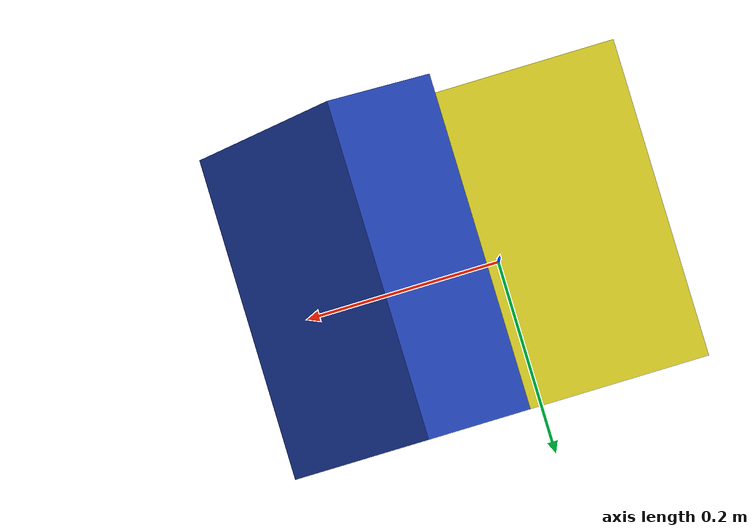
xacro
<?xml version="1.0"?>
<!-- Revolute-Revolute Manipulator -->
<!--
Copied and modified from ROS1 example -
https://github.com/ros-simulation/gazebo_ros_demos/blob/kinetic-devel/rrbot_description/urdf/rrbot.xacro
-->
<robot xmlns:xacro="http://www.ros.org/wiki/xacro" name="2dof_robot">
  <xacro:arg name="prefix" default="" />

  <!-- Import RRBot macro -->
  <xacro:include filename="$(find rrbot_cam)/urdf/rrbot_description.urdf.xacro" />

  <!-- Import Rviz colors -->
  <xacro:include filename="$(find rrbot_cam)/urdf/rrbot.materials.xacro" />

  <!-- Import RRBot ros2_control description -->
  <xacro:include filename="$(find rrbot_cam)/ros2_control/rrbot.ros2_control.xacro" />

  <!-- Used for fixing robot -->
  <link name="world"/>

  <xacro:rrbot parent="world" prefix="$(arg prefix)">
    <origin xyz="0 0 0" rpy="0 0 0" />
  </xacro:rrbot>

  <xacro:rrbot_ros2_control
    name="RRBot" prefix="$(arg prefix)" />

</robot>

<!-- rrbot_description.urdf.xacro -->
<robot xmlns:xacro="http://www.ros.org/wiki/xacro">

  <xacro:macro name="rrbot" params="parent prefix *origin">

  <!-- Constants for robot dimensions -->
  <xacro:property name="mass" value="1" /> <!-- arbitrary value for mass -->
  <xacro:property name="width" value="0.3" /> <!-- Square dimensions (widthxwidth) of beams -->
  <xacro:property name="height1" value="0.2" /> <!-- Link 1 -->
  <xacro:property name="height2" value="0.3" /> <!-- Link 2 -->
  <xacro:property name="height3" value="0.1" /> <!-- Link 3 -->
  <xacro:property name="axel_offset" value="0.0" /> <!-- Space btw top of beam and the each joint -->

  <joint name="${prefix}base_joint" type="fixed">
    <xacro:insert_block name="origin" />
    <parent link="${parent}"/>
    <child link="${prefix}base_link" />
  </joint>

  <!-- Base Link -->
  <link name="${prefix}base_link">
    <collision>
      <origin xyz="0 0 ${height1/2}" rpy="0 0 0"/>
      <geometry>
        <box size="${width} ${width} ${height1}"/>
      </geometry>
    </collision>

    <visual>
      <origin xyz="0 0 ${height1/2}" rpy="0 0 0"/>
      <geometry>
        <box size="${width} ${width} ${height1}"/>
      </geometry>
      <material name="orange"/>
    </visual>

    <inertial>
      <origin xyz="0 0 ${height1/2}" rpy="0 0 0"/>
      <mass value="${mass}"/>
      <inertia
        ixx="${mass / 12.0 * (width*width + height1*height1)}" ixy="0.0" ixz="0.0"
        iyy="${mass / 12.0 * (height1*height1 + width*width)}" iyz="0.0"
        izz="${mass / 12.0 * (width*width + width*width)}"/>
    </inertial>
  </link>

  <joint name="${prefix}joint1" type="revolute">
    <origin xyz="0 0 ${height1 - axel_offset}" rpy="0 0 0"/>
    <parent link="${prefix}base_link"/>
    <child link="${prefix}link1"/>
    <axis xyz="0 0 1"/>
    <limit effort="1000" lower="0" upper="${pi}" velocity="${radians(180)}" />
  </joint>

  <!-- Middle Link -->
  <link name="${prefix}link1">
    <collision>
      <origin xyz="0 0 ${height2/2 - axel_offset}" rpy="0 0 0"/>
      <geometry>
        <box size="${width} ${width} ${height2}"/>
      </geometry>
    </collision>

    <visual>
      <origin xyz="0 0 ${height2/2 - axel_offset}" rpy="0 0 0"/>
      <geometry>
        <box size="${width} ${width} ${height2}"/>
      </geometry>
      <material name="yellow"/>
    </visual>

    <inertial>
      <origin xyz="0 0 ${height2/2 - axel_offset}" rpy="0 0 0"/>
      <mass value="${mass}"/>
      <inertia
        ixx="${mass / 12.0 * (width*width + height2*height2)}" ixy="0.0" ixz="0.0"
        iyy="${mass / 12.0 * (height2*height2 + width*width)}" iyz="0.0"
        izz="${mass / 12.0 * (width*width + width*width)}"/>
    </inertial>
  </link>

  <joint name="${prefix}joint2" type="revolute">
    <parent link="${prefix}link1"/>
    <child link="{prefix}hinge_link"/>
    <origin xyz="${width/2} 0 ${height2 - axel_offset}" rpy="0 0 0"/>
    <axis xyz="0 1 0"/>
    <limit lower="${radians(10)}" upper="${radians(120)}" velocity="${radians(180)}" effort="1000.0"/>
  </joint>

  <link name="{prefix}hinge_link"/>

  <joint name="link_2_hinge" type="fixed">
    <parent link="{prefix}hinge_link"/>
    <child link="${prefix}link2"/>
    <origin xyz="-${width/2} 0 0" rpy="0.0 0.0 0.0"/>
  </joint>

  <!-- Top Link -->
  <link name="${prefix}link2">
    <origin xyz="3 3 3" rpy="0 0 0"/>
    <collision>
      <origin xyz="0 0 ${height3/2 - axel_offset}" rpy="0 0 0"/>
      <geometry>
        <box size="${width} ${width} ${height3}"/>
      </geometry>
    </collision>

    <visual>
      <origin xyz="0 0 ${height3/2 - axel_offset}" rpy="0 0 0"/>
      <geometry>
        <box size="${width} ${width} ${height3}"/>
      </geometry>
      <material name="blue"/>
    </visual>

    <inertial>
      <origin xyz="0 0 ${height3/2 - axel_offset}" rpy="0 0 0"/>
      <mass value="${mass}"/>
      <inertia
        ixx="${mass / 12.0 * (width*width + height3*height3)}" ixy="0.0" ixz="0.0"
        iyy="${mass / 12.0 * (height3*height3 + width*width)}" iyz="0.0"
        izz="${mass / 12.0 * (width*width + width*width)}"/>
    </inertial>
  </link>

  <!-- Tool Link -->

  </xacro:macro>

</robot>
